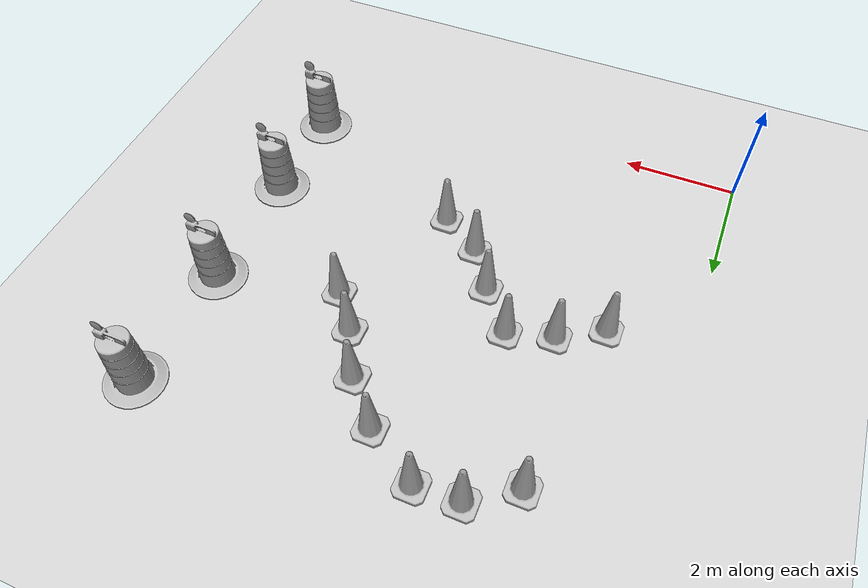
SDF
<sdf version="1.7">
 <world name="default">
  <light name="sun" type="directional">
   <pose>0 0 10 0 -0 0</pose>
   <diffuse>0.8 0.8 0.8 1</diffuse>
   <specular>0.2 0.2 0.2 1</specular>
   <attenuation>
    <range>1000</range>
    <constant>0.9</constant>
    <linear>0.01</linear>
    <quadratic>0.001</quadratic>
   </attenuation>
   <direction>-0.5 0.1 -0.9</direction>
   <spot><inner_angle>0</inner_angle><outer_angle>0</outer_angle><falloff>0</falloff></spot>
  </light>
  <model name="ground_plane">
   <static>1</static>
   <link name="link">
    <collision name="collision">
     <geometry><plane><normal>0 0 1</normal><size>100 100</size></plane></geometry>
     <surface>
      <contact><collide_bitmask>65535</collide_bitmask></contact>
      <friction><ode><mu>100</mu><mu2>50</mu2></ode></friction>
     </surface>
    </collision>
    <visual name="visual">
     <cast_shadows>0</cast_shadows>
     <geometry><plane><normal>0 0 1</normal><size>100 100</size></plane></geometry>
     <material>
      <script><uri>file://media/materials/scripts/gazebo.material</uri><name>Gazebo/Grey</name></script>
     </material>
    </visual>
   </link>
  </model>
  <gravity>0 0 -9.8</gravity>
  <magnetic_field>6e-06 2.3e-05 -4.2e-05</magnetic_field>
  <atmosphere type="adiabatic"/>
  <physics type="ode">
   <max_step_size>0.001</max_step_size>
   <real_time_factor>1</real_time_factor>
   <real_time_update_rate>1000</real_time_update_rate>
  </physics>
  <scene><ambient>0.4 0.4 0.4 1</ambient><background>0.7 0.7 0.7 1</background><shadows>1</shadows></scene>
  <audio><device>default</device></audio>
  <spherical_coordinates>
   <surface_model>EARTH_WGS84</surface_model>
   <latitude_deg>0</latitude_deg>
   <longitude_deg>0</longitude_deg>
   <elevation>0</elevation>
   <heading_deg>0</heading_deg>
  </spherical_coordinates>
  <model name="Construction Cone">
   <link name="link">
    <collision name="collision">
     <geometry>
      <mesh><scale>10 10 10</scale><uri>model://construction_cone/meshes/construction_cone.dae</uri></mesh>
     </geometry>
    </collision>
    <visual name="visual">
     <geometry>
      <mesh><scale>10 10 10</scale><uri>model://construction_cone/meshes/construction_cone.dae</uri></mesh>
     </geometry>
    </visual>
    <inertial>
     <inertia><ixx>1</ixx><ixy>0</ixy><ixz>0</ixz><iyy>1</iyy><iyz>0</iyz><izz>1</izz></inertia>
     <mass>1</mass>
    </inertial>
   </link>
   <pose>1.76812 6.87894 -0 0 -1e-06 0</pose>
  </model>
  <model name="Construction Cone_0">
   <link name="link">
    <collision name="collision">
     <geometry>
      <mesh><scale>10 10 10</scale><uri>model://construction_cone/meshes/construction_cone.dae</uri></mesh>
     </geometry>
    </collision>
    <visual name="visual">
     <geometry>
      <mesh><scale>10 10 10</scale><uri>model://construction_cone/meshes/construction_cone.dae</uri></mesh>
     </geometry>
    </visual>
    <inertial>
     <inertia><ixx>1</ixx><ixy>0</ixy><ixz>0</ixz><iyy>1</iyy><iyz>0</iyz><izz>1</izz></inertia>
     <mass>1</mass>
    </inertial>
   </link>
   <pose>2.50954 7.38044 -0 0 -0 0</pose>
  </model>
  <model name="Construction Cone_1">
   <link name="link">
    <collision name="collision">
     <geometry>
      <mesh><scale>10 10 10</scale><uri>model://construction_cone/meshes/construction_cone.dae</uri></mesh>
     </geometry>
    </collision>
    <visual name="visual">
     <geometry>
      <mesh><scale>10 10 10</scale><uri>model://construction_cone/meshes/construction_cone.dae</uri></mesh>
     </geometry>
    </visual>
    <inertial>
     <inertia><ixx>1</ixx><ixy>0</ixy><ixz>0</ixz><iyy>1</iyy><iyz>0</iyz><izz>1</izz></inertia>
     <mass>1</mass>
    </inertial>
   </link>
   <pose>3.25969 7.42086 -1e-06 3e-06 -1e-06 0</pose>
  </model>
  <model name="Construction Cone_2">
   <link name="link">
    <collision name="collision">
     <geometry>
      <mesh><scale>10 10 10</scale><uri>model://construction_cone/meshes/construction_cone.dae</uri></mesh>
     </geometry>
    </collision>
    <visual name="visual">
     <geometry>
      <mesh><scale>10 10 10</scale><uri>model://construction_cone/meshes/construction_cone.dae</uri></mesh>
     </geometry>
    </visual>
    <inertial>
     <inertia><ixx>1</ixx><ixy>0</ixy><ixz>0</ixz><iyy>1</iyy><iyz>0</iyz><izz>1</izz></inertia>
     <mass>1</mass>
    </inertial>
   </link>
   <pose>4.17585 6.85002 -6e-06 2e-06 -0 0</pose>
  </model>
  <model name="Construction Cone_3">
   <link name="link">
    <collision name="collision">
     <geometry>
      <mesh><scale>10 10 10</scale><uri>model://construction_cone/meshes/construction_cone.dae</uri></mesh>
     </geometry>
    </collision>
    <visual name="visual">
     <geometry>
      <mesh><scale>10 10 10</scale><uri>model://construction_cone/meshes/construction_cone.dae</uri></mesh>
     </geometry>
    </visual>
    <inertial>
     <inertia><ixx>1</ixx><ixy>0</ixy><ixz>0</ixz><iyy>1</iyy><iyz>0</iyz><izz>1</izz></inertia>
     <mass>1</mass>
    </inertial>
   </link>
   <pose>4.80301 6.1783 -8e-06 -5e-06 -0 -0</pose>
  </model>
  <model name="Construction Cone_4">
   <link name="link">
    <collision name="collision">
     <geometry>
      <mesh><scale>10 10 10</scale><uri>model://construction_cone/meshes/construction_cone.dae</uri></mesh>
     </geometry>
    </collision>
    <visual name="visual">
     <geometry>
      <mesh><scale>10 10 10</scale><uri>model://construction_cone/meshes/construction_cone.dae</uri></mesh>
     </geometry>
    </visual>
    <inertial>
     <inertia><ixx>1</ixx><ixy>0</ixy><ixz>0</ixz><iyy>1</iyy><iyz>0</iyz><izz>1</izz></inertia>
     <mass>1</mass>
    </inertial>
   </link>
   <pose>5.22586 5.4132 -0 0 -0 0</pose>
  </model>
  <model name="Construction Cone_5">
   <link name="link">
    <collision name="collision">
     <geometry>
      <mesh><scale>10 10 10</scale><uri>model://construction_cone/meshes/construction_cone.dae</uri></mesh>
     </geometry>
    </collision>
    <visual name="visual">
     <geometry>
      <mesh><scale>10 10 10</scale><uri>model://construction_cone/meshes/construction_cone.dae</uri></mesh>
     </geometry>
    </visual>
    <inertial>
     <inertia><ixx>1</ixx><ixy>0</ixy><ixz>0</ixz><iyy>1</iyy><iyz>0</iyz><izz>1</izz></inertia>
     <mass>1</mass>
    </inertial>
   </link>
   <pose>5.71302 4.81395 -0 0 -0 0</pose>
  </model>
  <model name="Construction Cone_6">
   <link name="link">
    <collision name="collision">
     <geometry>
      <mesh><scale>10 10 10</scale><uri>model://construction_cone/meshes/construction_cone.dae</uri></mesh>
     </geometry>
    </collision>
    <visual name="visual">
     <geometry>
      <mesh><scale>10 10 10</scale><uri>model://construction_cone/meshes/construction_cone.dae</uri></mesh>
     </geometry>
    </visual>
    <inertial>
     <inertia><ixx>1</ixx><ixy>0</ixy><ixz>0</ixz><iyy>1</iyy><iyz>0</iyz><izz>1</izz></inertia>
     <mass>1</mass>
    </inertial>
   </link>
   <pose>1.37002 3.85419 -6e-06 -4e-06 1e-06 0</pose>
  </model>
  <model name="Construction Cone_7">
   <link name="link">
    <collision name="collision">
     <geometry>
      <mesh><scale>10 10 10</scale><uri>model://construction_cone/meshes/construction_cone.dae</uri></mesh>
     </geometry>
    </collision>
    <visual name="visual">
     <geometry>
      <mesh><scale>10 10 10</scale><uri>model://construction_cone/meshes/construction_cone.dae</uri></mesh>
     </geometry>
    </visual>
    <inertial>
     <inertia><ixx>1</ixx><ixy>0</ixy><ixz>0</ixz><iyy>1</iyy><iyz>0</iyz><izz>1</izz></inertia>
     <mass>1</mass>
    </inertial>
   </link>
   <pose>2.11092 4.29233 -0 0 -0 0</pose>
  </model>
  <model name="Construction Cone_8">
   <link name="link">
    <collision name="collision">
     <geometry>
      <mesh><scale>10 10 10</scale><uri>model://construction_cone/meshes/construction_cone.dae</uri></mesh>
     </geometry>
    </collision>
    <visual name="visual">
     <geometry>
      <mesh><scale>10 10 10</scale><uri>model://construction_cone/meshes/construction_cone.dae</uri></mesh>
     </geometry>
    </visual>
    <inertial>
     <inertia><ixx>1</ixx><ixy>0</ixy><ixz>0</ixz><iyy>1</iyy><iyz>0</iyz><izz>1</izz></inertia>
     <mass>1</mass>
    </inertial>
   </link>
   <pose>2.88579 4.51167 -6e-06 -4e-06 -0 -0</pose>
  </model>
  <model name="Construction Cone_9">
   <link name="link">
    <collision name="collision">
     <geometry>
      <mesh><scale>10 10 10</scale><uri>model://construction_cone/meshes/construction_cone.dae</uri></mesh>
     </geometry>
    </collision>
    <visual name="visual">
     <geometry>
      <mesh><scale>10 10 10</scale><uri>model://construction_cone/meshes/construction_cone.dae</uri></mesh>
     </geometry>
    </visual>
    <inertial>
     <inertia><ixx>1</ixx><ixy>0</ixy><ixz>0</ixz><iyy>1</iyy><iyz>0</iyz><izz>1</izz></inertia>
     <mass>1</mass>
    </inertial>
   </link>
   <pose>3.46367 3.82016 -0 0 -0 0</pose>
  </model>
  <model name="Construction Cone_10">
   <link name="link">
    <collision name="collision">
     <geometry>
      <mesh><scale>10 10 10</scale><uri>model://construction_cone/meshes/construction_cone.dae</uri></mesh>
     </geometry>
    </collision>
    <visual name="visual">
     <geometry>
      <mesh><scale>10 10 10</scale><uri>model://construction_cone/meshes/construction_cone.dae</uri></mesh>
     </geometry>
    </visual>
    <inertial>
     <inertia><ixx>1</ixx><ixy>0</ixy><ixz>0</ixz><iyy>1</iyy><iyz>0</iyz><izz>1</izz></inertia>
     <mass>1</mass>
    </inertial>
   </link>
   <pose>3.93186 3.11346 -5e-06 -4e-06 1e-06 0</pose>
  </model>
  <model name="Construction Cone_11">
   <link name="link">
    <collision name="collision">
     <geometry>
      <mesh><scale>10 10 10</scale><uri>model://construction_cone/meshes/construction_cone.dae</uri></mesh>
     </geometry>
    </collision>
    <visual name="visual">
     <geometry>
      <mesh><scale>10 10 10</scale><uri>model://construction_cone/meshes/construction_cone.dae</uri></mesh>
     </geometry>
    </visual>
    <inertial>
     <inertia><ixx>1</ixx><ixy>0</ixy><ixz>0</ixz><iyy>1</iyy><iyz>0</iyz><izz>1</izz></inertia>
     <mass>1</mass>
    </inertial>
   </link>
   <pose>4.64421 2.65683 -0 0 -1e-06 0</pose>
  </model>
  <model name="Construction Barrel">
   <link name="link">
    <inertial>
     <pose>0 0 0.4 0 -0 0</pose>
     <mass>500</mass>
     <inertia><ixx>51.2096</ixx><iyy>51.2096</iyy><izz>25</izz><ixy>0</ixy><ixz>0</ixz><iyz>0</iyz></inertia>
    </inertial>
    <collision name="collision">
     <geometry><mesh><uri>model://construction_barrel/meshes/construction_barrel.dae</uri></mesh></geometry>
    </collision>
    <visual name="visual">
     <geometry><mesh><uri>model://construction_barrel/meshes/construction_barrel.dae</uri></mesh></geometry>
    </visual>
   </link>
   <pose>7.9179 7.4795 -1e-06 3e-06 1e-05 -7e-06</pose>
  </model>
  <model name="Construction Barrel_0">
   <link name="link">
    <inertial>
     <pose>0 0 0.4 0 -0 0</pose>
     <mass>500</mass>
     <inertia><ixx>51.2096</ixx><iyy>51.2096</iyy><izz>25</izz><ixy>0</ixy><ixz>0</ixz><iyz>0</iyz></inertia>
    </inertial>
    <collision name="collision">
     <geometry><mesh><uri>model://construction_barrel/meshes/construction_barrel.dae</uri></mesh></geometry>
    </collision>
    <visual name="visual">
     <geometry><mesh><uri>model://construction_barrel/meshes/construction_barrel.dae</uri></mesh></geometry>
    </visual>
   </link>
   <pose>7.80823 5.25674 1e-06 2e-06 3e-06 -6e-06</pose>
  </model>
  <model name="Construction Barrel_1">
   <link name="link">
    <inertial>
     <pose>0 0 0.4 0 -0 0</pose>
     <mass>500</mass>
     <inertia><ixx>51.2096</ixx><iyy>51.2096</iyy><izz>25</izz><ixy>0</ixy><ixz>0</ixz><iyz>0</iyz></inertia>
    </inertial>
    <collision name="collision">
     <geometry><mesh><uri>model://construction_barrel/meshes/construction_barrel.dae</uri></mesh></geometry>
    </collision>
    <visual name="visual">
     <geometry><mesh><uri>model://construction_barrel/meshes/construction_barrel.dae</uri></mesh></geometry>
    </visual>
   </link>
   <pose>7.80733 3.03662 0 0 0 -3e-06</pose>
  </model>
  <model name="Construction Barrel_2">
   <link name="link">
    <inertial>
     <pose>0 0 0.4 0 -0 0</pose>
     <mass>500</mass>
     <inertia><ixx>51.2096</ixx><iyy>51.2096</iyy><izz>25</izz><ixy>0</ixy><ixz>0</ixz><iyz>0</iyz></inertia>
    </inertial>
    <collision name="collision">
     <geometry><mesh><uri>model://construction_barrel/meshes/construction_barrel.dae</uri></mesh></geometry>
    </collision>
    <visual name="visual">
     <geometry><mesh><uri>model://construction_barrel/meshes/construction_barrel.dae</uri></mesh></geometry>
    </visual>
   </link>
   <pose>7.80803 1.26011 -1e-06 3e-06 -2e-06 -2e-06</pose>
  </model>
 </world>
</sdf>
